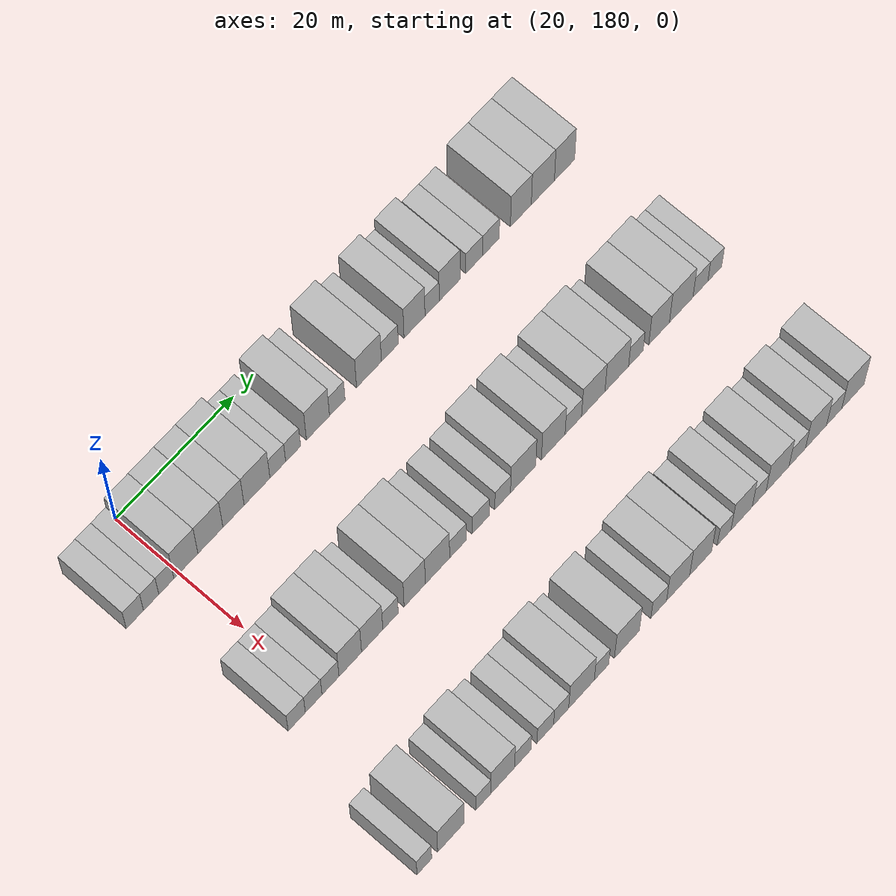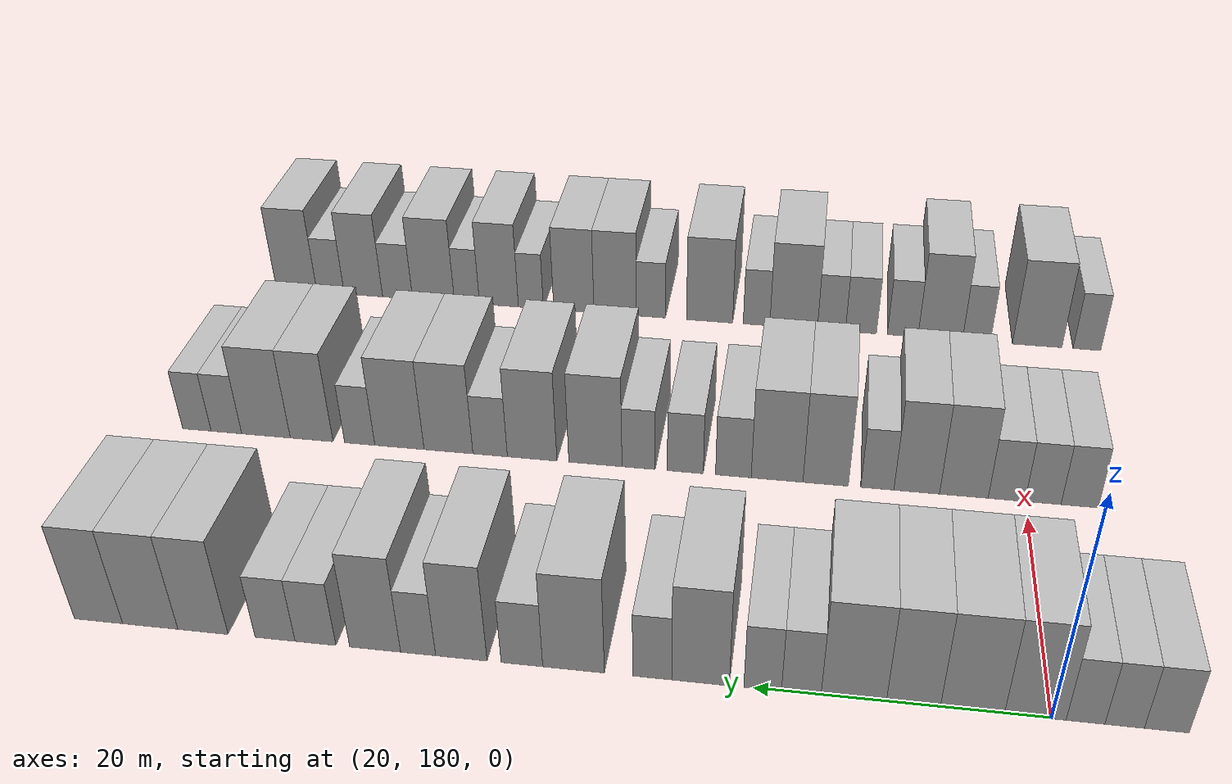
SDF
<sdf version="1.6">
 <world name="default">
  <model name="building_98">
   <static>1</static>
   <pose>25.0000 172.5302 0 0.000000 0.000000 0.000000</pose>
   <link name="link">
    <pose>0 0 3.00 0 0 0</pose>
    <collision name="collision"><geometry><box><size>10.0000 2.8871 6.0000</size></box></geometry></collision>
    <visual name="visual">
     <cast_shadows>0</cast_shadows>
     <geometry><box><size>10.0000 2.8871 6.0000</size></box></geometry>
     <material>
      <script>
       <uri>model://HANNAS_wall/materials/scripts</uri>
       <uri>model://HANNAS_wall/materials/textures</uri>
       <name>vrc/HANNAS_wall</name>
      </script>
     </material>
    </visual>
   </link>
  </model>
  <model name="building_99">
   <static>1</static>
   <pose>25.0000 175.2540 0 0.000000 0.000000 0.000000</pose>
   <link name="link">
    <pose>0 0 3.00 0 0 0</pose>
    <collision name="collision"><geometry><box><size>10.0000 2.5605 6.0000</size></box></geometry></collision>
    <visual name="visual">
     <cast_shadows>0</cast_shadows>
     <geometry><box><size>10.0000 2.5605 6.0000</size></box></geometry>
     <material>
      <script>
       <uri>model://HANNAS_wall/materials/scripts</uri>
       <uri>model://HANNAS_wall/materials/textures</uri>
       <name>vrc/HANNAS_wall</name>
      </script>
     </material>
    </visual>
   </link>
  </model>
  <model name="building_100">
   <static>1</static>
   <pose>25.0000 177.7992 0 0.000000 0.000000 0.000000</pose>
   <link name="link">
    <pose>0 0 3.00 0 0 0</pose>
    <collision name="collision"><geometry><box><size>10.0000 2.5300 6.0000</size></box></geometry></collision>
    <visual name="visual">
     <cast_shadows>0</cast_shadows>
     <geometry><box><size>10.0000 2.5300 6.0000</size></box></geometry>
     <material>
      <script>
       <uri>model://HANNAS_wall/materials/scripts</uri>
       <uri>model://HANNAS_wall/materials/textures</uri>
       <name>vrc/HANNAS_wall</name>
      </script>
     </material>
    </visual>
   </link>
  </model>
  <model name="building_101">
   <static>1</static>
   <pose>25.0000 181.0884 0 0.000000 0.000000 0.000000</pose>
   <link name="link">
    <pose>0 0 4.50 0 0 0</pose>
    <collision name="collision"><geometry><box><size>10.0000 4.0484 9.0000</size></box></geometry></collision>
    <visual name="visual">
     <cast_shadows>0</cast_shadows>
     <geometry><box><size>10.0000 4.0484 9.0000</size></box></geometry>
     <material>
      <script>
       <uri>model://HANNAS_wall/materials/scripts</uri>
       <uri>model://HANNAS_wall/materials/textures</uri>
       <name>vrc/HANNAS_wall</name>
      </script>
     </material>
    </visual>
   </link>
  </model>
  <model name="building_102">
   <static>1</static>
   <pose>25.0000 185.2376 0 0.000000 0.000000 0.000000</pose>
   <link name="link">
    <pose>0 0 4.50 0 0 0</pose>
    <collision name="collision"><geometry><box><size>10.0000 4.2500 9.0000</size></box></geometry></collision>
    <visual name="visual">
     <cast_shadows>0</cast_shadows>
     <geometry><box><size>10.0000 4.2500 9.0000</size></box></geometry>
     <material>
      <script>
       <uri>model://HANNAS_wall/materials/scripts</uri>
       <uri>model://HANNAS_wall/materials/textures</uri>
       <name>vrc/HANNAS_wall</name>
      </script>
     </material>
    </visual>
   </link>
  </model>
  <model name="building_103">
   <static>1</static>
   <pose>25.0000 189.1665 0 0.000000 0.000000 0.000000</pose>
   <link name="link">
    <pose>0 0 4.50 0 0 0</pose>
    <collision name="collision"><geometry><box><size>10.0000 3.6077 9.0000</size></box></geometry></collision>
    <visual name="visual">
     <cast_shadows>0</cast_shadows>
     <geometry><box><size>10.0000 3.6077 9.0000</size></box></geometry>
     <material>
      <script>
       <uri>model://HANNAS_wall/materials/scripts</uri>
       <uri>model://HANNAS_wall/materials/textures</uri>
       <name>vrc/HANNAS_wall</name>
      </script>
     </material>
    </visual>
   </link>
  </model>
  <model name="building_104">
   <static>1</static>
   <pose>25.0000 193.1754 0 0.000000 0.000000 0.000000</pose>
   <link name="link">
    <pose>0 0 4.50 0 0 0</pose>
    <collision name="collision"><geometry><box><size>10.0000 4.4101 9.0000</size></box></geometry></collision>
    <visual name="visual">
     <cast_shadows>0</cast_shadows>
     <geometry><box><size>10.0000 4.4101 9.0000</size></box></geometry>
     <material>
      <script>
       <uri>model://HANNAS_wall/materials/scripts</uri>
       <uri>model://HANNAS_wall/materials/textures</uri>
       <name>vrc/HANNAS_wall</name>
      </script>
     </material>
    </visual>
   </link>
  </model>
  <model name="building_105">
   <static>1</static>
   <pose>25.0000 196.7265 0 0.000000 0.000000 0.000000</pose>
   <link name="link">
    <pose>0 0 3.00 0 0 0</pose>
    <collision name="collision"><geometry><box><size>10.0000 2.6920 6.0000</size></box></geometry></collision>
    <visual name="visual">
     <cast_shadows>0</cast_shadows>
     <geometry><box><size>10.0000 2.6920 6.0000</size></box></geometry>
     <material>
      <script>
       <uri>model://HANNAS_wall/materials/scripts</uri>
       <uri>model://HANNAS_wall/materials/textures</uri>
       <name>vrc/HANNAS_wall</name>
      </script>
     </material>
    </visual>
   </link>
  </model>
  <model name="building_106">
   <static>1</static>
   <pose>25.0000 199.3588 0 0.000000 0.000000 0.000000</pose>
   <link name="link">
    <pose>0 0 3.00 0 0 0</pose>
    <collision name="collision"><geometry><box><size>10.0000 2.5725 6.0000</size></box></geometry></collision>
    <visual name="visual">
     <cast_shadows>0</cast_shadows>
     <geometry><box><size>10.0000 2.5725 6.0000</size></box></geometry>
     <material>
      <script>
       <uri>model://HANNAS_wall/materials/scripts</uri>
       <uri>model://HANNAS_wall/materials/textures</uri>
       <name>vrc/HANNAS_wall</name>
      </script>
     </material>
    </visual>
   </link>
  </model>
  <model name="building_107">
   <static>1</static>
   <pose>25.0000 203.6347 0 0.000000 0.000000 0.000000</pose>
   <link name="link">
    <pose>0 0 4.50 0 0 0</pose>
    <collision name="collision"><geometry><box><size>10.0000 3.9793 9.0000</size></box></geometry></collision>
    <visual name="visual">
     <cast_shadows>0</cast_shadows>
     <geometry><box><size>10.0000 3.9793 9.0000</size></box></geometry>
     <material>
      <script>
       <uri>model://HANNAS_wall/materials/scripts</uri>
       <uri>model://HANNAS_wall/materials/textures</uri>
       <name>vrc/HANNAS_wall</name>
      </script>
     </material>
    </visual>
   </link>
  </model>
  <model name="building_108">
   <static>1</static>
   <pose>25.0000 206.9692 0 0.000000 0.000000 0.000000</pose>
   <link name="link">
    <pose>0 0 3.00 0 0 0</pose>
    <collision name="collision"><geometry><box><size>10.0000 2.6899 6.0000</size></box></geometry></collision>
    <visual name="visual">
     <cast_shadows>0</cast_shadows>
     <geometry><box><size>10.0000 2.6899 6.0000</size></box></geometry>
     <material>
      <script>
       <uri>model://HANNAS_wall/materials/scripts</uri>
       <uri>model://HANNAS_wall/materials/textures</uri>
       <name>vrc/HANNAS_wall</name>
      </script>
     </material>
    </visual>
   </link>
  </model>
  <model name="building_109">
   <static>1</static>
   <pose>25.0000 212.4853 0 0.000000 0.000000 0.000000</pose>
   <link name="link">
    <pose>0 0 4.50 0 0 0</pose>
    <collision name="collision"><geometry><box><size>10.0000 4.3423 9.0000</size></box></geometry></collision>
    <visual name="visual">
     <cast_shadows>0</cast_shadows>
     <geometry><box><size>10.0000 4.3423 9.0000</size></box></geometry>
     <material>
      <script>
       <uri>model://HANNAS_wall/materials/scripts</uri>
       <uri>model://HANNAS_wall/materials/textures</uri>
       <name>vrc/HANNAS_wall</name>
      </script>
     </material>
    </visual>
   </link>
  </model>
  <model name="building_110">
   <static>1</static>
   <pose>25.0000 216.1326 0 0.000000 0.000000 0.000000</pose>
   <link name="link">
    <pose>0 0 3.00 0 0 0</pose>
    <collision name="collision"><geometry><box><size>10.0000 2.9524 6.0000</size></box></geometry></collision>
    <visual name="visual">
     <cast_shadows>0</cast_shadows>
     <geometry><box><size>10.0000 2.9524 6.0000</size></box></geometry>
     <material>
      <script>
       <uri>model://HANNAS_wall/materials/scripts</uri>
       <uri>model://HANNAS_wall/materials/textures</uri>
       <name>vrc/HANNAS_wall</name>
      </script>
     </material>
    </visual>
   </link>
  </model>
  <model name="building_111">
   <static>1</static>
   <pose>25.0000 220.4530 0 0.000000 0.000000 0.000000</pose>
   <link name="link">
    <pose>0 0 4.50 0 0 0</pose>
    <collision name="collision"><geometry><box><size>10.0000 3.6884 9.0000</size></box></geometry></collision>
    <visual name="visual">
     <cast_shadows>0</cast_shadows>
     <geometry><box><size>10.0000 3.6884 9.0000</size></box></geometry>
     <material>
      <script>
       <uri>model://HANNAS_wall/materials/scripts</uri>
       <uri>model://HANNAS_wall/materials/textures</uri>
       <name>vrc/HANNAS_wall</name>
      </script>
     </material>
    </visual>
   </link>
  </model>
  <model name="building_112">
   <static>1</static>
   <pose>25.0000 223.5583 0 0.000000 0.000000 0.000000</pose>
   <link name="link">
    <pose>0 0 3.00 0 0 0</pose>
    <collision name="collision"><geometry><box><size>10.0000 2.5222 6.0000</size></box></geometry></collision>
    <visual name="visual">
     <cast_shadows>0</cast_shadows>
     <geometry><box><size>10.0000 2.5222 6.0000</size></box></geometry>
     <material>
      <script>
       <uri>model://HANNAS_wall/materials/scripts</uri>
       <uri>model://HANNAS_wall/materials/textures</uri>
       <name>vrc/HANNAS_wall</name>
      </script>
     </material>
    </visual>
   </link>
  </model>
  <model name="building_113">
   <static>1</static>
   <pose>25.0000 226.6686 0 0.000000 0.000000 0.000000</pose>
   <link name="link">
    <pose>0 0 4.50 0 0 0</pose>
    <collision name="collision"><geometry><box><size>10.0000 3.6984 9.0000</size></box></geometry></collision>
    <visual name="visual">
     <cast_shadows>0</cast_shadows>
     <geometry><box><size>10.0000 3.6984 9.0000</size></box></geometry>
     <material>
      <script>
       <uri>model://HANNAS_wall/materials/scripts</uri>
       <uri>model://HANNAS_wall/materials/textures</uri>
       <name>vrc/HANNAS_wall</name>
      </script>
     </material>
    </visual>
   </link>
  </model>
  <model name="building_114">
   <static>1</static>
   <pose>25.0000 231.0175 0 0.000000 0.000000 0.000000</pose>
   <link name="link">
    <pose>0 0 3.00 0 0 0</pose>
    <collision name="collision"><geometry><box><size>10.0000 2.9995 6.0000</size></box></geometry></collision>
    <visual name="visual">
     <cast_shadows>0</cast_shadows>
     <geometry><box><size>10.0000 2.9995 6.0000</size></box></geometry>
     <material>
      <script>
       <uri>model://HANNAS_wall/materials/scripts</uri>
       <uri>model://HANNAS_wall/materials/textures</uri>
       <name>vrc/HANNAS_wall</name>
      </script>
     </material>
    </visual>
   </link>
  </model>
  <model name="building_115">
   <static>1</static>
   <pose>25.0000 233.9949 0 0.000000 0.000000 0.000000</pose>
   <link name="link">
    <pose>0 0 3.00 0 0 0</pose>
    <collision name="collision"><geometry><box><size>10.0000 2.9553 6.0000</size></box></geometry></collision>
    <visual name="visual">
     <cast_shadows>0</cast_shadows>
     <geometry><box><size>10.0000 2.9553 6.0000</size></box></geometry>
     <material>
      <script>
       <uri>model://HANNAS_wall/materials/scripts</uri>
       <uri>model://HANNAS_wall/materials/textures</uri>
       <name>vrc/HANNAS_wall</name>
      </script>
     </material>
    </visual>
   </link>
  </model>
  <model name="building_116">
   <static>1</static>
   <pose>25.0000 239.3454 0 0.000000 0.000000 0.000000</pose>
   <link name="link">
    <pose>0 0 4.50 0 0 0</pose>
    <collision name="collision"><geometry><box><size>10.0000 3.7455 9.0000</size></box></geometry></collision>
    <visual name="visual">
     <cast_shadows>0</cast_shadows>
     <geometry><box><size>10.0000 3.7455 9.0000</size></box></geometry>
     <material>
      <script>
       <uri>model://HANNAS_wall/materials/scripts</uri>
       <uri>model://HANNAS_wall/materials/textures</uri>
       <name>vrc/HANNAS_wall</name>
      </script>
     </material>
    </visual>
   </link>
  </model>
  <model name="building_117">
   <static>1</static>
   <pose>25.0000 243.2962 0 0.000000 0.000000 0.000000</pose>
   <link name="link">
    <pose>0 0 4.50 0 0 0</pose>
    <collision name="collision"><geometry><box><size>10.0000 4.1560 9.0000</size></box></geometry></collision>
    <visual name="visual">
     <cast_shadows>0</cast_shadows>
     <geometry><box><size>10.0000 4.1560 9.0000</size></box></geometry>
     <material>
      <script>
       <uri>model://HANNAS_wall/materials/scripts</uri>
       <uri>model://HANNAS_wall/materials/textures</uri>
       <name>vrc/HANNAS_wall</name>
      </script>
     </material>
    </visual>
   </link>
  </model>
  <model name="building_118">
   <static>1</static>
   <pose>25.0000 247.1995 0 0.000000 0.000000 0.000000</pose>
   <link name="link">
    <pose>0 0 4.50 0 0 0</pose>
    <collision name="collision"><geometry><box><size>10.0000 3.6506 9.0000</size></box></geometry></collision>
    <visual name="visual">
     <cast_shadows>0</cast_shadows>
     <geometry><box><size>10.0000 3.6506 9.0000</size></box></geometry>
     <material>
      <script>
       <uri>model://HANNAS_wall/materials/scripts</uri>
       <uri>model://HANNAS_wall/materials/textures</uri>
       <name>vrc/HANNAS_wall</name>
      </script>
     </material>
    </visual>
   </link>
  </model>
  <model name="building_229">
   <static>1</static>
   <pose>47.0000 175.8263 0 0.000000 0.000000 0.000000</pose>
   <link name="link">
    <pose>0 0 3.00 0 0 0</pose>
    <collision name="collision"><geometry><box><size>10.0000 2.8833 6.0000</size></box></geometry></collision>
    <visual name="visual">
     <cast_shadows>0</cast_shadows>
     <geometry><box><size>10.0000 2.8833 6.0000</size></box></geometry>
     <material>
      <script>
       <uri>model://HANNAS_wall/materials/scripts</uri>
       <uri>model://HANNAS_wall/materials/textures</uri>
       <name>vrc/HANNAS_wall</name>
      </script>
     </material>
    </visual>
   </link>
  </model>
  <model name="building_230">
   <static>1</static>
   <pose>47.0000 178.6715 0 0.000000 0.000000 0.000000</pose>
   <link name="link">
    <pose>0 0 3.00 0 0 0</pose>
    <collision name="collision"><geometry><box><size>10.0000 2.8072 6.0000</size></box></geometry></collision>
    <visual name="visual">
     <cast_shadows>0</cast_shadows>
     <geometry><box><size>10.0000 2.8072 6.0000</size></box></geometry>
     <material>
      <script>
       <uri>model://HANNAS_wall/materials/scripts</uri>
       <uri>model://HANNAS_wall/materials/textures</uri>
       <name>vrc/HANNAS_wall</name>
      </script>
     </material>
    </visual>
   </link>
  </model>
  <model name="building_231">
   <static>1</static>
   <pose>47.0000 181.5113 0 0.000000 0.000000 0.000000</pose>
   <link name="link">
    <pose>0 0 3.00 0 0 0</pose>
    <collision name="collision"><geometry><box><size>10.0000 2.8724 6.0000</size></box></geometry></collision>
    <visual name="visual">
     <cast_shadows>0</cast_shadows>
     <geometry><box><size>10.0000 2.8724 6.0000</size></box></geometry>
     <material>
      <script>
       <uri>model://HANNAS_wall/materials/scripts</uri>
       <uri>model://HANNAS_wall/materials/textures</uri>
       <name>vrc/HANNAS_wall</name>
      </script>
     </material>
    </visual>
   </link>
  </model>
  <model name="building_232">
   <static>1</static>
   <pose>47.0000 184.8608 0 0.000000 0.000000 0.000000</pose>
   <link name="link">
    <pose>0 0 4.50 0 0 0</pose>
    <collision name="collision"><geometry><box><size>10.0000 3.8266 9.0000</size></box></geometry></collision>
    <visual name="visual">
     <cast_shadows>0</cast_shadows>
     <geometry><box><size>10.0000 3.8266 9.0000</size></box></geometry>
     <material>
      <script>
       <uri>model://HANNAS_wall/materials/scripts</uri>
       <uri>model://HANNAS_wall/materials/textures</uri>
       <name>vrc/HANNAS_wall</name>
      </script>
     </material>
    </visual>
   </link>
  </model>
  <model name="building_233">
   <static>1</static>
   <pose>47.0000 188.5838 0 0.000000 0.000000 0.000000</pose>
   <link name="link">
    <pose>0 0 4.50 0 0 0</pose>
    <collision name="collision"><geometry><box><size>10.0000 3.6194 9.0000</size></box></geometry></collision>
    <visual name="visual">
     <cast_shadows>0</cast_shadows>
     <geometry><box><size>10.0000 3.6194 9.0000</size></box></geometry>
     <material>
      <script>
       <uri>model://HANNAS_wall/materials/scripts</uri>
       <uri>model://HANNAS_wall/materials/textures</uri>
       <name>vrc/HANNAS_wall</name>
      </script>
     </material>
    </visual>
   </link>
  </model>
  <model name="building_234">
   <static>1</static>
   <pose>47.0000 191.7106 0 0.000000 0.000000 0.000000</pose>
   <link name="link">
    <pose>0 0 3.00 0 0 0</pose>
    <collision name="collision"><geometry><box><size>10.0000 2.6343 6.0000</size></box></geometry></collision>
    <visual name="visual">
     <cast_shadows>0</cast_shadows>
     <geometry><box><size>10.0000 2.6343 6.0000</size></box></geometry>
     <material>
      <script>
       <uri>model://HANNAS_wall/materials/scripts</uri>
       <uri>model://HANNAS_wall/materials/textures</uri>
       <name>vrc/HANNAS_wall</name>
      </script>
     </material>
    </visual>
   </link>
  </model>
  <model name="building_235">
   <static>1</static>
   <pose>47.0000 195.8484 0 0.000000 0.000000 0.000000</pose>
   <link name="link">
    <pose>0 0 4.50 0 0 0</pose>
    <collision name="collision"><geometry><box><size>10.0000 3.6412 9.0000</size></box></geometry></collision>
    <visual name="visual">
     <cast_shadows>0</cast_shadows>
     <geometry><box><size>10.0000 3.6412 9.0000</size></box></geometry>
     <material>
      <script>
       <uri>model://HANNAS_wall/materials/scripts</uri>
       <uri>model://HANNAS_wall/materials/textures</uri>
       <name>vrc/HANNAS_wall</name>
      </script>
     </material>
    </visual>
   </link>
  </model>
  <model name="building_236">
   <static>1</static>
   <pose>47.0000 199.7650 0 0.000000 0.000000 0.000000</pose>
   <link name="link">
    <pose>0 0 4.50 0 0 0</pose>
    <collision name="collision"><geometry><box><size>10.0000 4.1920 9.0000</size></box></geometry></collision>
    <visual name="visual">
     <cast_shadows>0</cast_shadows>
     <geometry><box><size>10.0000 4.1920 9.0000</size></box></geometry>
     <material>
      <script>
       <uri>model://HANNAS_wall/materials/scripts</uri>
       <uri>model://HANNAS_wall/materials/textures</uri>
       <name>vrc/HANNAS_wall</name>
      </script>
     </material>
    </visual>
   </link>
  </model>
  <model name="building_237">
   <static>1</static>
   <pose>47.0000 203.3105 0 0.000000 0.000000 0.000000</pose>
   <link name="link">
    <pose>0 0 3.00 0 0 0</pose>
    <collision name="collision"><geometry><box><size>10.0000 2.8990 6.0000</size></box></geometry></collision>
    <visual name="visual">
     <cast_shadows>0</cast_shadows>
     <geometry><box><size>10.0000 2.8990 6.0000</size></box></geometry>
     <material>
      <script>
       <uri>model://HANNAS_wall/materials/scripts</uri>
       <uri>model://HANNAS_wall/materials/textures</uri>
       <name>vrc/HANNAS_wall</name>
      </script>
     </material>
    </visual>
   </link>
  </model>
  <model name="building_238">
   <static>1</static>
   <pose>47.0000 207.2339 0 0.000000 0.000000 0.000000</pose>
   <link name="link">
    <pose>0 0 3.00 0 0 0</pose>
    <collision name="collision"><geometry><box><size>10.0000 2.9478 6.0000</size></box></geometry></collision>
    <visual name="visual">
     <cast_shadows>0</cast_shadows>
     <geometry><box><size>10.0000 2.9478 6.0000</size></box></geometry>
     <material>
      <script>
       <uri>model://HANNAS_wall/materials/scripts</uri>
       <uri>model://HANNAS_wall/materials/textures</uri>
       <name>vrc/HANNAS_wall</name>
      </script>
     </material>
    </visual>
   </link>
  </model>
  <model name="building_239">
   <static>1</static>
   <pose>47.0000 211.0773 0 0.000000 0.000000 0.000000</pose>
   <link name="link">
    <pose>0 0 3.00 0 0 0</pose>
    <collision name="collision"><geometry><box><size>10.0000 2.7388 6.0000</size></box></geometry></collision>
    <visual name="visual">
     <cast_shadows>0</cast_shadows>
     <geometry><box><size>10.0000 2.7388 6.0000</size></box></geometry>
     <material>
      <script>
       <uri>model://HANNAS_wall/materials/scripts</uri>
       <uri>model://HANNAS_wall/materials/textures</uri>
       <name>vrc/HANNAS_wall</name>
      </script>
     </material>
    </visual>
   </link>
  </model>
  <model name="building_240">
   <static>1</static>
   <pose>47.0000 214.6597 0 0.000000 0.000000 0.000000</pose>
   <link name="link">
    <pose>0 0 4.50 0 0 0</pose>
    <collision name="collision"><geometry><box><size>10.0000 4.4260 9.0000</size></box></geometry></collision>
    <visual name="visual">
     <cast_shadows>0</cast_shadows>
     <geometry><box><size>10.0000 4.4260 9.0000</size></box></geometry>
     <material>
      <script>
       <uri>model://HANNAS_wall/materials/scripts</uri>
       <uri>model://HANNAS_wall/materials/textures</uri>
       <name>vrc/HANNAS_wall</name>
      </script>
     </material>
    </visual>
   </link>
  </model>
  <model name="building_241">
   <static>1</static>
   <pose>47.0000 219.9526 0 0.000000 0.000000 0.000000</pose>
   <link name="link">
    <pose>0 0 4.50 0 0 0</pose>
    <collision name="collision"><geometry><box><size>10.0000 4.1597 9.0000</size></box></geometry></collision>
    <visual name="visual">
     <cast_shadows>0</cast_shadows>
     <geometry><box><size>10.0000 4.1597 9.0000</size></box></geometry>
     <material>
      <script>
       <uri>model://HANNAS_wall/materials/scripts</uri>
       <uri>model://HANNAS_wall/materials/textures</uri>
       <name>vrc/HANNAS_wall</name>
      </script>
     </material>
    </visual>
   </link>
  </model>
  <model name="building_242">
   <static>1</static>
   <pose>47.0000 223.4879 0 0.000000 0.000000 0.000000</pose>
   <link name="link">
    <pose>0 0 3.00 0 0 0</pose>
    <collision name="collision"><geometry><box><size>10.0000 2.9110 6.0000</size></box></geometry></collision>
    <visual name="visual">
     <cast_shadows>0</cast_shadows>
     <geometry><box><size>10.0000 2.9110 6.0000</size></box></geometry>
     <material>
      <script>
       <uri>model://HANNAS_wall/materials/scripts</uri>
       <uri>model://HANNAS_wall/materials/textures</uri>
       <name>vrc/HANNAS_wall</name>
      </script>
     </material>
    </visual>
   </link>
  </model>
  <model name="building_243">
   <static>1</static>
   <pose>47.0000 227.0237 0 0.000000 0.000000 0.000000</pose>
   <link name="link">
    <pose>0 0 4.50 0 0 0</pose>
    <collision name="collision"><geometry><box><size>10.0000 4.1606 9.0000</size></box></geometry></collision>
    <visual name="visual">
     <cast_shadows>0</cast_shadows>
     <geometry><box><size>10.0000 4.1606 9.0000</size></box></geometry>
     <material>
      <script>
       <uri>model://HANNAS_wall/materials/scripts</uri>
       <uri>model://HANNAS_wall/materials/textures</uri>
       <name>vrc/HANNAS_wall</name>
      </script>
     </material>
    </visual>
   </link>
  </model>
  <model name="building_244">
   <static>1</static>
   <pose>47.0000 231.2136 0 0.000000 0.000000 0.000000</pose>
   <link name="link">
    <pose>0 0 4.50 0 0 0</pose>
    <collision name="collision"><geometry><box><size>10.0000 4.2192 9.0000</size></box></geometry></collision>
    <visual name="visual">
     <cast_shadows>0</cast_shadows>
     <geometry><box><size>10.0000 4.2192 9.0000</size></box></geometry>
     <material>
      <script>
       <uri>model://HANNAS_wall/materials/scripts</uri>
       <uri>model://HANNAS_wall/materials/textures</uri>
       <name>vrc/HANNAS_wall</name>
      </script>
     </material>
    </visual>
   </link>
  </model>
  <model name="building_245">
   <static>1</static>
   <pose>47.0000 234.6272 0 0.000000 0.000000 0.000000</pose>
   <link name="link">
    <pose>0 0 3.00 0 0 0</pose>
    <collision name="collision"><geometry><box><size>10.0000 2.6081 6.0000</size></box></geometry></collision>
    <visual name="visual">
     <cast_shadows>0</cast_shadows>
     <geometry><box><size>10.0000 2.6081 6.0000</size></box></geometry>
     <material>
      <script>
       <uri>model://HANNAS_wall/materials/scripts</uri>
       <uri>model://HANNAS_wall/materials/textures</uri>
       <name>vrc/HANNAS_wall</name>
      </script>
     </material>
    </visual>
   </link>
  </model>
  <model name="building_246">
   <static>1</static>
   <pose>47.0000 238.7909 0 0.000000 0.000000 0.000000</pose>
   <link name="link">
    <pose>0 0 4.50 0 0 0</pose>
    <collision name="collision"><geometry><box><size>10.0000 3.7192 9.0000</size></box></geometry></collision>
    <visual name="visual">
     <cast_shadows>0</cast_shadows>
     <geometry><box><size>10.0000 3.7192 9.0000</size></box></geometry>
     <material>
      <script>
       <uri>model://HANNAS_wall/materials/scripts</uri>
       <uri>model://HANNAS_wall/materials/textures</uri>
       <name>vrc/HANNAS_wall</name>
      </script>
     </material>
    </visual>
   </link>
  </model>
  <model name="building_247">
   <static>1</static>
   <pose>47.0000 242.7802 0 0.000000 0.000000 0.000000</pose>
   <link name="link">
    <pose>0 0 4.50 0 0 0</pose>
    <collision name="collision"><geometry><box><size>10.0000 4.2595 9.0000</size></box></geometry></collision>
    <visual name="visual">
     <cast_shadows>0</cast_shadows>
     <geometry><box><size>10.0000 4.2595 9.0000</size></box></geometry>
     <material>
      <script>
       <uri>model://HANNAS_wall/materials/scripts</uri>
       <uri>model://HANNAS_wall/materials/textures</uri>
       <name>vrc/HANNAS_wall</name>
      </script>
     </material>
    </visual>
   </link>
  </model>
  <model name="building_248">
   <static>1</static>
   <pose>47.0000 246.2589 0 0.000000 0.000000 0.000000</pose>
   <link name="link">
    <pose>0 0 3.00 0 0 0</pose>
    <collision name="collision"><geometry><box><size>10.0000 2.6980 6.0000</size></box></geometry></collision>
    <visual name="visual">
     <cast_shadows>0</cast_shadows>
     <geometry><box><size>10.0000 2.6980 6.0000</size></box></geometry>
     <material>
      <script>
       <uri>model://HANNAS_wall/materials/scripts</uri>
       <uri>model://HANNAS_wall/materials/textures</uri>
       <name>vrc/HANNAS_wall</name>
      </script>
     </material>
    </visual>
   </link>
  </model>
  <model name="building_249">
   <static>1</static>
   <pose>47.0000 248.8628 0 0.000000 0.000000 0.000000</pose>
   <link name="link">
    <pose>0 0 3.00 0 0 0</pose>
    <collision name="collision"><geometry><box><size>10.0000 2.5099 6.0000</size></box></geometry></collision>
    <visual name="visual">
     <cast_shadows>0</cast_shadows>
     <geometry><box><size>10.0000 2.5099 6.0000</size></box></geometry>
     <material>
      <script>
       <uri>model://HANNAS_wall/materials/scripts</uri>
       <uri>model://HANNAS_wall/materials/textures</uri>
       <name>vrc/HANNAS_wall</name>
      </script>
     </material>
    </visual>
   </link>
  </model>
  <model name="building_358">
   <static>1</static>
   <pose>69.0000 172.8231 0 0.000000 0.000000 0.000000</pose>
   <link name="link">
    <pose>0 0 3.00 0 0 0</pose>
    <collision name="collision"><geometry><box><size>10.0000 2.4757 6.0000</size></box></geometry></collision>
    <visual name="visual">
     <cast_shadows>0</cast_shadows>
     <geometry><box><size>10.0000 2.4757 6.0000</size></box></geometry>
     <material>
      <script>
       <uri>model://HANNAS_wall/materials/scripts</uri>
       <uri>model://HANNAS_wall/materials/textures</uri>
       <name>vrc/HANNAS_wall</name>
      </script>
     </material>
    </visual>
   </link>
  </model>
  <model name="building_359">
   <static>1</static>
   <pose>69.0000 177.2892 0 0.000000 0.000000 0.000000</pose>
   <link name="link">
    <pose>0 0 4.50 0 0 0</pose>
    <collision name="collision"><geometry><box><size>10.0000 4.4567 9.0000</size></box></geometry></collision>
    <visual name="visual">
     <cast_shadows>0</cast_shadows>
     <geometry><box><size>10.0000 4.4567 9.0000</size></box></geometry>
     <material>
      <script>
       <uri>model://HANNAS_wall/materials/scripts</uri>
       <uri>model://HANNAS_wall/materials/textures</uri>
       <name>vrc/HANNAS_wall</name>
      </script>
     </material>
    </visual>
   </link>
  </model>
  <model name="building_360">
   <static>1</static>
   <pose>69.0000 182.7822 0 0.000000 0.000000 0.000000</pose>
   <link name="link">
    <pose>0 0 3.00 0 0 0</pose>
    <collision name="collision"><geometry><box><size>10.0000 2.5292 6.0000</size></box></geometry></collision>
    <visual name="visual">
     <cast_shadows>0</cast_shadows>
     <geometry><box><size>10.0000 2.5292 6.0000</size></box></geometry>
     <material>
      <script>
       <uri>model://HANNAS_wall/materials/scripts</uri>
       <uri>model://HANNAS_wall/materials/textures</uri>
       <name>vrc/HANNAS_wall</name>
      </script>
     </material>
    </visual>
   </link>
  </model>
  <model name="building_361">
   <static>1</static>
   <pose>69.0000 186.0786 0 0.000000 0.000000 0.000000</pose>
   <link name="link">
    <pose>0 0 4.50 0 0 0</pose>
    <collision name="collision"><geometry><box><size>10.0000 4.0637 9.0000</size></box></geometry></collision>
    <visual name="visual">
     <cast_shadows>0</cast_shadows>
     <geometry><box><size>10.0000 4.0637 9.0000</size></box></geometry>
     <material>
      <script>
       <uri>model://HANNAS_wall/materials/scripts</uri>
       <uri>model://HANNAS_wall/materials/textures</uri>
       <name>vrc/HANNAS_wall</name>
      </script>
     </material>
    </visual>
   </link>
  </model>
  <model name="building_362">
   <static>1</static>
   <pose>69.0000 189.5160 0 0.000000 0.000000 0.000000</pose>
   <link name="link">
    <pose>0 0 3.00 0 0 0</pose>
    <collision name="collision"><geometry><box><size>10.0000 2.8110 6.0000</size></box></geometry></collision>
    <visual name="visual">
     <cast_shadows>0</cast_shadows>
     <geometry><box><size>10.0000 2.8110 6.0000</size></box></geometry>
     <material>
      <script>
       <uri>model://HANNAS_wall/materials/scripts</uri>
       <uri>model://HANNAS_wall/materials/textures</uri>
       <name>vrc/HANNAS_wall</name>
      </script>
     </material>
    </visual>
   </link>
  </model>
  <model name="building_363">
   <static>1</static>
   <pose>69.0000 193.3542 0 0.000000 0.000000 0.000000</pose>
   <link name="link">
    <pose>0 0 3.00 0 0 0</pose>
    <collision name="collision"><geometry><box><size>10.0000 2.8655 6.0000</size></box></geometry></collision>
    <visual name="visual">
     <cast_shadows>0</cast_shadows>
     <geometry><box><size>10.0000 2.8655 6.0000</size></box></geometry>
     <material>
      <script>
       <uri>model://HANNAS_wall/materials/scripts</uri>
       <uri>model://HANNAS_wall/materials/textures</uri>
       <name>vrc/HANNAS_wall</name>
      </script>
     </material>
    </visual>
   </link>
  </model>
  <model name="building_364">
   <static>1</static>
   <pose>69.0000 196.0882 0 0.000000 0.000000 0.000000</pose>
   <link name="link">
    <pose>0 0 3.00 0 0 0</pose>
    <collision name="collision"><geometry><box><size>10.0000 2.6025 6.0000</size></box></geometry></collision>
    <visual name="visual">
     <cast_shadows>0</cast_shadows>
     <geometry><box><size>10.0000 2.6025 6.0000</size></box></geometry>
     <material>
      <script>
       <uri>model://HANNAS_wall/materials/scripts</uri>
       <uri>model://HANNAS_wall/materials/textures</uri>
       <name>vrc/HANNAS_wall</name>
      </script>
     </material>
    </visual>
   </link>
  </model>
  <model name="building_365">
   <static>1</static>
   <pose>69.0000 199.6077 0 0.000000 0.000000 0.000000</pose>
   <link name="link">
    <pose>0 0 4.50 0 0 0</pose>
    <collision name="collision"><geometry><box><size>10.0000 4.4365 9.0000</size></box></geometry></collision>
    <visual name="visual">
     <cast_shadows>0</cast_shadows>
     <geometry><box><size>10.0000 4.4365 9.0000</size></box></geometry>
     <material>
      <script>
       <uri>model://HANNAS_wall/materials/scripts</uri>
       <uri>model://HANNAS_wall/materials/textures</uri>
       <name>vrc/HANNAS_wall</name>
      </script>
     </material>
    </visual>
   </link>
  </model>
  <model name="building_366">
   <static>1</static>
   <pose>69.0000 203.0711 0 0.000000 0.000000 0.000000</pose>
   <link name="link">
    <pose>0 0 3.00 0 0 0</pose>
    <collision name="collision"><geometry><box><size>10.0000 2.4903 6.0000</size></box></geometry></collision>
    <visual name="visual">
     <cast_shadows>0</cast_shadows>
     <geometry><box><size>10.0000 2.4903 6.0000</size></box></geometry>
     <material>
      <script>
       <uri>model://HANNAS_wall/materials/scripts</uri>
       <uri>model://HANNAS_wall/materials/textures</uri>
       <name>vrc/HANNAS_wall</name>
      </script>
     </material>
    </visual>
   </link>
  </model>
  <model name="building_367">
   <static>1</static>
   <pose>69.0000 207.4943 0 0.000000 0.000000 0.000000</pose>
   <link name="link">
    <pose>0 0 4.50 0 0 0</pose>
    <collision name="collision"><geometry><box><size>10.0000 4.3562 9.0000</size></box></geometry></collision>
    <visual name="visual">
     <cast_shadows>0</cast_shadows>
     <geometry><box><size>10.0000 4.3562 9.0000</size></box></geometry>
     <material>
      <script>
       <uri>model://HANNAS_wall/materials/scripts</uri>
       <uri>model://HANNAS_wall/materials/textures</uri>
       <name>vrc/HANNAS_wall</name>
      </script>
     </material>
    </visual>
   </link>
  </model>
  <model name="building_368">
   <static>1</static>
   <pose>69.0000 213.0571 0 0.000000 0.000000 0.000000</pose>
   <link name="link">
    <pose>0 0 3.00 0 0 0</pose>
    <collision name="collision"><geometry><box><size>10.0000 2.7695 6.0000</size></box></geometry></collision>
    <visual name="visual">
     <cast_shadows>0</cast_shadows>
     <geometry><box><size>10.0000 2.7695 6.0000</size></box></geometry>
     <material>
      <script>
       <uri>model://HANNAS_wall/materials/scripts</uri>
       <uri>model://HANNAS_wall/materials/textures</uri>
       <name>vrc/HANNAS_wall</name>
      </script>
     </material>
    </visual>
   </link>
  </model>
  <model name="building_369">
   <static>1</static>
   <pose>69.0000 216.4746 0 0.000000 0.000000 0.000000</pose>
   <link name="link">
    <pose>0 0 4.50 0 0 0</pose>
    <collision name="collision"><geometry><box><size>10.0000 4.0655 9.0000</size></box></geometry></collision>
    <visual name="visual">
     <cast_shadows>0</cast_shadows>
     <geometry><box><size>10.0000 4.0655 9.0000</size></box></geometry>
     <material>
      <script>
       <uri>model://HANNAS_wall/materials/scripts</uri>
       <uri>model://HANNAS_wall/materials/textures</uri>
       <name>vrc/HANNAS_wall</name>
      </script>
     </material>
    </visual>
   </link>
  </model>
  <model name="building_370">
   <static>1</static>
   <pose>69.0000 220.4529 0 0.000000 0.000000 0.000000</pose>
   <link name="link">
    <pose>0 0 4.50 0 0 0</pose>
    <collision name="collision"><geometry><box><size>10.0000 3.8910 9.0000</size></box></geometry></collision>
    <visual name="visual">
     <cast_shadows>0</cast_shadows>
     <geometry><box><size>10.0000 3.8910 9.0000</size></box></geometry>
     <material>
      <script>
       <uri>model://HANNAS_wall/materials/scripts</uri>
       <uri>model://HANNAS_wall/materials/textures</uri>
       <name>vrc/HANNAS_wall</name>
      </script>
     </material>
    </visual>
   </link>
  </model>
  <model name="building_371">
   <static>1</static>
   <pose>69.0000 224.6097 0 0.000000 0.000000 0.000000</pose>
   <link name="link">
    <pose>0 0 3.00 0 0 0</pose>
    <collision name="collision"><geometry><box><size>10.0000 2.4227 6.0000</size></box></geometry></collision>
    <visual name="visual">
     <cast_shadows>0</cast_shadows>
     <geometry><box><size>10.0000 2.4227 6.0000</size></box></geometry>
     <material>
      <script>
       <uri>model://HANNAS_wall/materials/scripts</uri>
       <uri>model://HANNAS_wall/materials/textures</uri>
       <name>vrc/HANNAS_wall</name>
      </script>
     </material>
    </visual>
   </link>
  </model>
  <model name="building_372">
   <static>1</static>
   <pose>69.0000 227.7222 0 0.000000 0.000000 0.000000</pose>
   <link name="link">
    <pose>0 0 4.50 0 0 0</pose>
    <collision name="collision"><geometry><box><size>10.0000 3.8023 9.0000</size></box></geometry></collision>
    <visual name="visual">
     <cast_shadows>0</cast_shadows>
     <geometry><box><size>10.0000 3.8023 9.0000</size></box></geometry>
     <material>
      <script>
       <uri>model://HANNAS_wall/materials/scripts</uri>
       <uri>model://HANNAS_wall/materials/textures</uri>
       <name>vrc/HANNAS_wall</name>
      </script>
     </material>
    </visual>
   </link>
  </model>
  <model name="building_373">
   <static>1</static>
   <pose>69.0000 230.8503 0 0.000000 0.000000 0.000000</pose>
   <link name="link">
    <pose>0 0 3.00 0 0 0</pose>
    <collision name="collision"><geometry><box><size>10.0000 2.4540 6.0000</size></box></geometry></collision>
    <visual name="visual">
     <cast_shadows>0</cast_shadows>
     <geometry><box><size>10.0000 2.4540 6.0000</size></box></geometry>
     <material>
      <script>
       <uri>model://HANNAS_wall/materials/scripts</uri>
       <uri>model://HANNAS_wall/materials/textures</uri>
       <name>vrc/HANNAS_wall</name>
      </script>
     </material>
    </visual>
   </link>
  </model>
  <model name="building_374">
   <static>1</static>
   <pose>69.0000 234.1453 0 0.000000 0.000000 0.000000</pose>
   <link name="link">
    <pose>0 0 4.50 0 0 0</pose>
    <collision name="collision"><geometry><box><size>10.0000 4.1362 9.0000</size></box></geometry></collision>
    <visual name="visual">
     <cast_shadows>0</cast_shadows>
     <geometry><box><size>10.0000 4.1362 9.0000</size></box></geometry>
     <material>
      <script>
       <uri>model://HANNAS_wall/materials/scripts</uri>
       <uri>model://HANNAS_wall/materials/textures</uri>
       <name>vrc/HANNAS_wall</name>
      </script>
     </material>
    </visual>
   </link>
  </model>
  <model name="building_375">
   <static>1</static>
   <pose>69.0000 237.6973 0 0.000000 0.000000 0.000000</pose>
   <link name="link">
    <pose>0 0 3.00 0 0 0</pose>
    <collision name="collision"><geometry><box><size>10.0000 2.9678 6.0000</size></box></geometry></collision>
    <visual name="visual">
     <cast_shadows>0</cast_shadows>
     <geometry><box><size>10.0000 2.9678 6.0000</size></box></geometry>
     <material>
      <script>
       <uri>model://HANNAS_wall/materials/scripts</uri>
       <uri>model://HANNAS_wall/materials/textures</uri>
       <name>vrc/HANNAS_wall</name>
      </script>
     </material>
    </visual>
   </link>
  </model>
  <model name="building_376">
   <static>1</static>
   <pose>69.0000 241.0947 0 0.000000 0.000000 0.000000</pose>
   <link name="link">
    <pose>0 0 4.50 0 0 0</pose>
    <collision name="collision"><geometry><box><size>10.0000 3.8271 9.0000</size></box></geometry></collision>
    <visual name="visual">
     <cast_shadows>0</cast_shadows>
     <geometry><box><size>10.0000 3.8271 9.0000</size></box></geometry>
     <material>
      <script>
       <uri>model://HANNAS_wall/materials/scripts</uri>
       <uri>model://HANNAS_wall/materials/textures</uri>
       <name>vrc/HANNAS_wall</name>
      </script>
     </material>
    </visual>
   </link>
  </model>
  <model name="building_377">
   <static>1</static>
   <pose>69.0000 244.3803 0 0.000000 0.000000 0.000000</pose>
   <link name="link">
    <pose>0 0 3.00 0 0 0</pose>
    <collision name="collision"><geometry><box><size>10.0000 2.7441 6.0000</size></box></geometry></collision>
    <visual name="visual">
     <cast_shadows>0</cast_shadows>
     <geometry><box><size>10.0000 2.7441 6.0000</size></box></geometry>
     <material>
      <script>
       <uri>model://HANNAS_wall/materials/scripts</uri>
       <uri>model://HANNAS_wall/materials/textures</uri>
       <name>vrc/HANNAS_wall</name>
      </script>
     </material>
    </visual>
   </link>
  </model>
  <model name="building_378">
   <static>1</static>
   <pose>69.0000 247.7863 0 0.000000 0.000000 0.000000</pose>
   <link name="link">
    <pose>0 0 4.50 0 0 0</pose>
    <collision name="collision"><geometry><box><size>10.0000 4.0679 9.0000</size></box></geometry></collision>
    <visual name="visual">
     <cast_shadows>0</cast_shadows>
     <geometry><box><size>10.0000 4.0679 9.0000</size></box></geometry>
     <material>
      <script>
       <uri>model://HANNAS_wall/materials/scripts</uri>
       <uri>model://HANNAS_wall/materials/textures</uri>
       <name>vrc/HANNAS_wall</name>
      </script>
     </material>
    </visual>
   </link>
  </model>
 </world>
</sdf>
